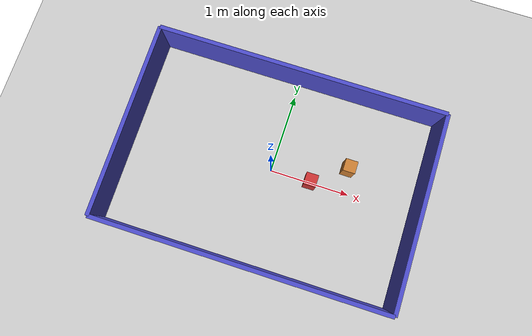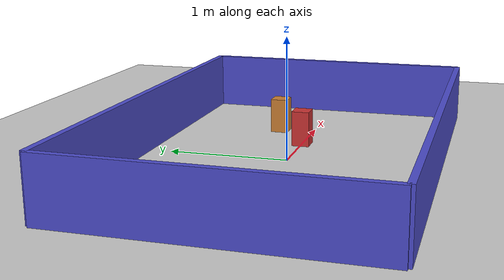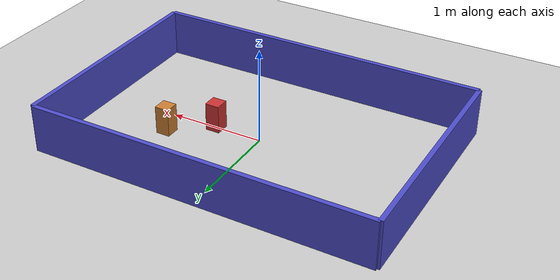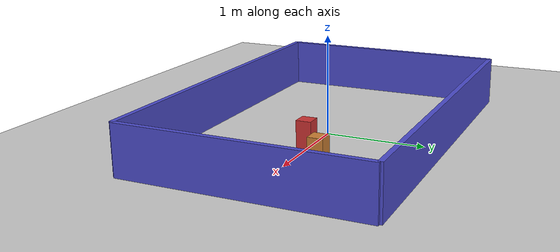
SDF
<?xml version="1.0" ?>
<sdf version="1.8">
  <world name="arena">
    <physics name="1ms" type="ignored">
      <max_step_size>0.001</max_step_size>
      <real_time_factor>1.0</real_time_factor>
    </physics>
    <plugin filename="gz-sim-physics-system"
            name="gz::sim::systems::Physics"/>
    <plugin filename="gz-sim-user-commands-system"
            name="gz::sim::systems::UserCommands"/>
    <plugin filename="gz-sim-scene-broadcaster-system"
            name="gz::sim::systems::SceneBroadcaster"/>
    <plugin filename="gz-sim-sensors-system"
            name="gz::sim::systems::Sensors">
      <render_engine>ogre2</render_engine>
    </plugin>
    <light name="sun" type="directional">
      <cast_shadows>true</cast_shadows>
      <pose>0 0 10 0 0 0</pose>
      <diffuse>0.8 0.8 0.8 1</diffuse>
      <specular>0.2 0.2 0.2 1</specular>
      <direction>-0.5 0.1 -0.9</direction>
    </light>
    <!-- Gulv -->
    <model name="ground_plane">
      <static>true</static>
      <link name="link">
        <collision name="collision">
          <geometry><plane><normal>0 0 1</normal><size>10 10</size></plane></geometry>
        </collision>
        <visual name="visual">
          <geometry><plane><normal>0 0 1</normal><size>10 10</size></plane></geometry>
          <material>
            <ambient>0.8 0.8 0.8 1</ambient>
            <diffuse>0.8 0.8 0.8 1</diffuse>
          </material>
        </visual>
      </link>
    </model>
    <!-- Nordvegg Y=+1.2 -->
    <model name="wall_north">
      <static>true</static>
      <pose>0 1.2 0.25 0 0 0</pose>
      <link name="link">
        <collision name="collision">
          <geometry><box><size>3.6 0.05 0.5</size></box></geometry>
        </collision>
        <visual name="visual">
          <geometry><box><size>3.6 0.05 0.5</size></box></geometry>
          <material><ambient>0.3 0.3 0.8 1</ambient><diffuse>0.3 0.3 0.8 1</diffuse></material>
        </visual>
      </link>
    </model>
    <!-- Sørvegg Y=-1.2 -->
    <model name="wall_south">
      <static>true</static>
      <pose>0 -1.2 0.25 0 0 0</pose>
      <link name="link">
        <collision name="collision">
          <geometry><box><size>3.6 0.05 0.5</size></box></geometry>
        </collision>
        <visual name="visual">
          <geometry><box><size>3.6 0.05 0.5</size></box></geometry>
          <material><ambient>0.3 0.3 0.8 1</ambient><diffuse>0.3 0.3 0.8 1</diffuse></material>
        </visual>
      </link>
    </model>
    <!-- Østvegg X=+1.8 -->
    <model name="wall_east">
      <static>true</static>
      <pose>1.8 0 0.25 0 0 0</pose>
      <link name="link">
        <collision name="collision">
          <geometry><box><size>0.05 2.4 0.5</size></box></geometry>
        </collision>
        <visual name="visual">
          <geometry><box><size>0.05 2.4 0.5</size></box></geometry>
          <material><ambient>0.3 0.3 0.8 1</ambient><diffuse>0.3 0.3 0.8 1</diffuse></material>
        </visual>
      </link>
    </model>
    <!-- Vestvegg X=-1.8 -->
    <model name="wall_west">
      <static>true</static>
      <pose>-1.8 0 0.25 0 0 0</pose>
      <link name="link">
        <collision name="collision">
          <geometry><box><size>0.05 2.4 0.5</size></box></geometry>
        </collision>
        <visual name="visual">
          <geometry><box><size>0.05 2.4 0.5</size></box></geometry>
          <material><ambient>0.3 0.3 0.8 1</ambient><diffuse>0.3 0.3 0.8 1</diffuse></material>
        </visual>
      </link>
    </model>
    <!-- Hindring 1 — midt i robotens vei (0.5, 0.0) -->
    <model name="obstacle_1">
      <static>true</static>
      <pose>0.5 0.0 0.15 0 0 0</pose>
      <link name="link">
        <collision name="collision">
          <geometry><box><size>0.15 0.15 0.3</size></box></geometry>
        </collision>
        <visual name="visual">
          <geometry><box><size>0.15 0.15 0.3</size></box></geometry>
          <material><ambient>0.8 0.2 0.2 1</ambient><diffuse>0.8 0.2 0.2 1</diffuse></material>
        </visual>
      </link>
    </model>
    <!-- Hindring 2 — litt til siden (0.9, 0.3) -->
    <model name="obstacle_2">
      <static>true</static>
      <pose>0.9 0.3 0.15 0 0 0</pose>
      <link name="link">
        <collision name="collision">
          <geometry><box><size>0.15 0.15 0.3</size></box></geometry>
        </collision>
        <visual name="visual">
          <geometry><box><size>0.15 0.15 0.3</size></box></geometry>
          <material><ambient>0.8 0.5 0.2 1</ambient><diffuse>0.8 0.5 0.2 1</diffuse></material>
        </visual>
      </link>
    </model>
  </world>
</sdf>
